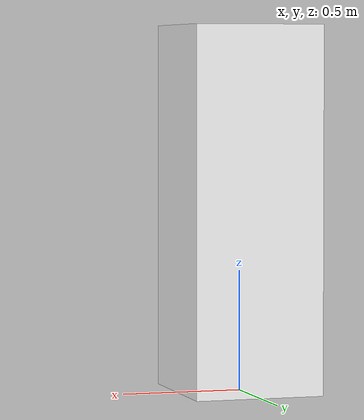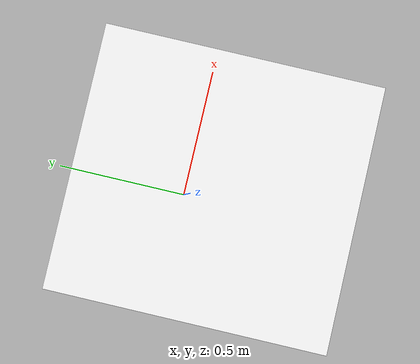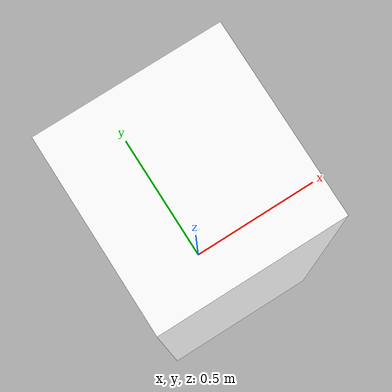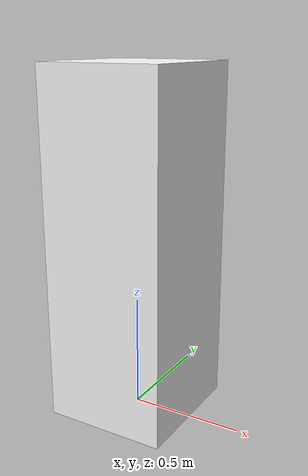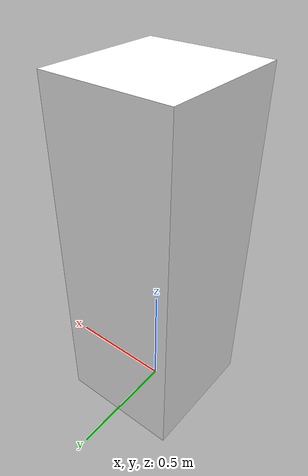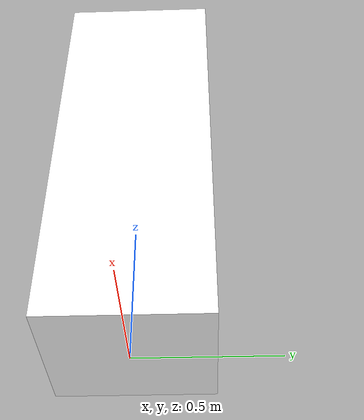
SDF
<sdf version="1.6">
    <model name="fridge">
        <static>true</static>
        <!-- Body of the fridge -->
        <link name="body">
            <pose>0 0 0.76 0 0 0</pose>
            <visual name="visual_body">
                <geometry>
                    <box>
                        <size>0.54 0.57 1.52</size>
                    </box>
                </geometry>
                <material>
                    <ambient>1 1 1 1</ambient> <!-- White color, fully opaque -->
                </material>
            </visual>
            <collision name="collision_body">
                <geometry>
                    <box>
                        <size>0.54 0.57 1.52</size>
                    </box>
                </geometry>
            </collision>
        </link>
    </model>
</sdf>
